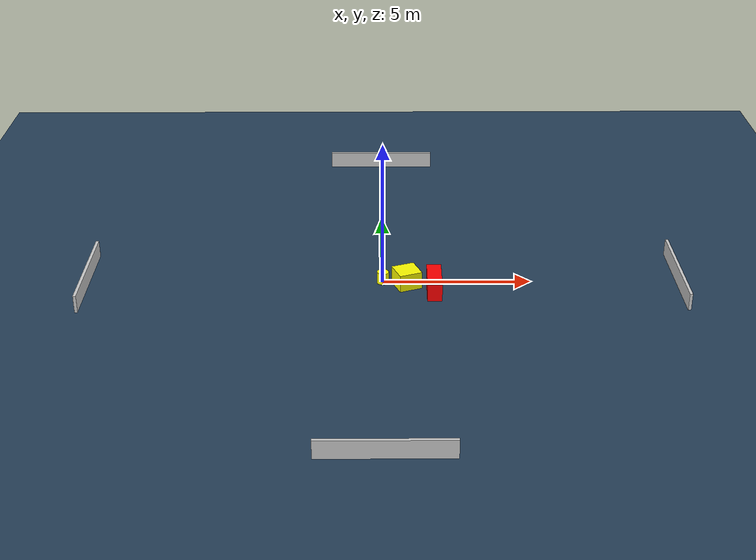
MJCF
<?xml version="1.0" ?>
<mujoco model="generated_environment">
  <option timestep="0.01" integrator="RK4" cone="elliptic"/>
  <default>
    <geom density="1"/>
  </default>
  <asset>
    <texture builtin="gradient" height="3072" name="skybox" rgb1="0.3 0.5 0.7" rgb2="0 0 0" type="skybox" width="512"/>
    <texture builtin="checker" height="300" name="groundplane" rgb1="0.2 0.3 0.4" rgb2="0.1 0.2 0.3" type="2d" width="300"/>
    <material name="groundplane" reflectance="0.2" texrepeat="5 5" texture="groundplane"/>
  </asset>
  <worldbody>
    <light dir="0 0 -1" directional="true" pos="0 0 1.5"/>
    <geom condim="3" friction="0.5 0.005 0.001" material="groundplane" name="floor" pos="0 0 0" size="0 0 0.05" type="plane"/>
    <body name="walls">
      <geom name="wall_1" condim="4" pos="-10.0 0.0 0.3" rgba="0.800000011920929 0.800000011920929 0.800000011920929 1.0" size="0.05 2.0 0.3" type="box"/>
      <geom name="wall_2" condim="4" pos="10.0 0.0 0.3" rgba="0.800000011920929 0.800000011920929 0.800000011920929 1.0" size="0.05 2.0 0.3" type="box"/>
      <geom name="wall_3" condim="4" pos="0.0 -10.0 0.3" rgba="0.800000011920929 0.800000011920929 0.800000011920929 1.0" size="2.0 0.05 0.3" type="box"/>
      <geom name="wall_4" condim="4" pos="0.0 10.0 0.3" rgba="0.800000011920929 0.800000011920929 0.800000011920929 1.0" size="2.0 0.05 0.3" type="box"/>
    </body>
    <body name="robot">
      <joint name="joint_x" type="slide" pos="0 0 0" axis="1 0 0"/>
      <joint name="joint_y" type="slide" pos="0 0 0" axis="0 1 0"/>
      <geom name="robot" type="cylinder" pos="0.0 0.0 0.2" size="0.2 0.2 0.0" mass="5.0" friction="1.0 0.005 0.0001" condim="4" rgba="1.0 1.0 0.0 1.0"/>
    </body>
    <body name="obstacle_1_movable">
      <geom name="obstacle_1_movable" condim="4" pos="0.8047604286811845 -0.21572981803641236 0.3" euler="0 0 110.93058669412815" friction="0.0 0.005 0.001" rgba="1.0 1.0 0.0 1.0" size="0.38796282603780874 0.39632361674428884 0.3" type="box" mass="0.1"/>
      <joint type="free"/>
    </body>
    <body name="obstacle_2_static">
      <geom name="obstacle_2_static" condim="4" pos="1.7155651327461412 -0.6024298513960442 0.3" euler="0 0 269.4247985200822" friction="0.0 0.005 0.001" rgba="1.0 0.0 0.0 1.0" size="0.7313602316192802 0.24627608163176345 0.3" type="box"/>
    </body>
  </worldbody>
  <actuator>
    <motor name="actuator_x" joint="joint_x" gear="1" ctrlrange="-1 1"/>
    <motor name="actuator_y" joint="joint_y" gear="1" ctrlrange="-1 1"/>
  </actuator>
</mujoco>
